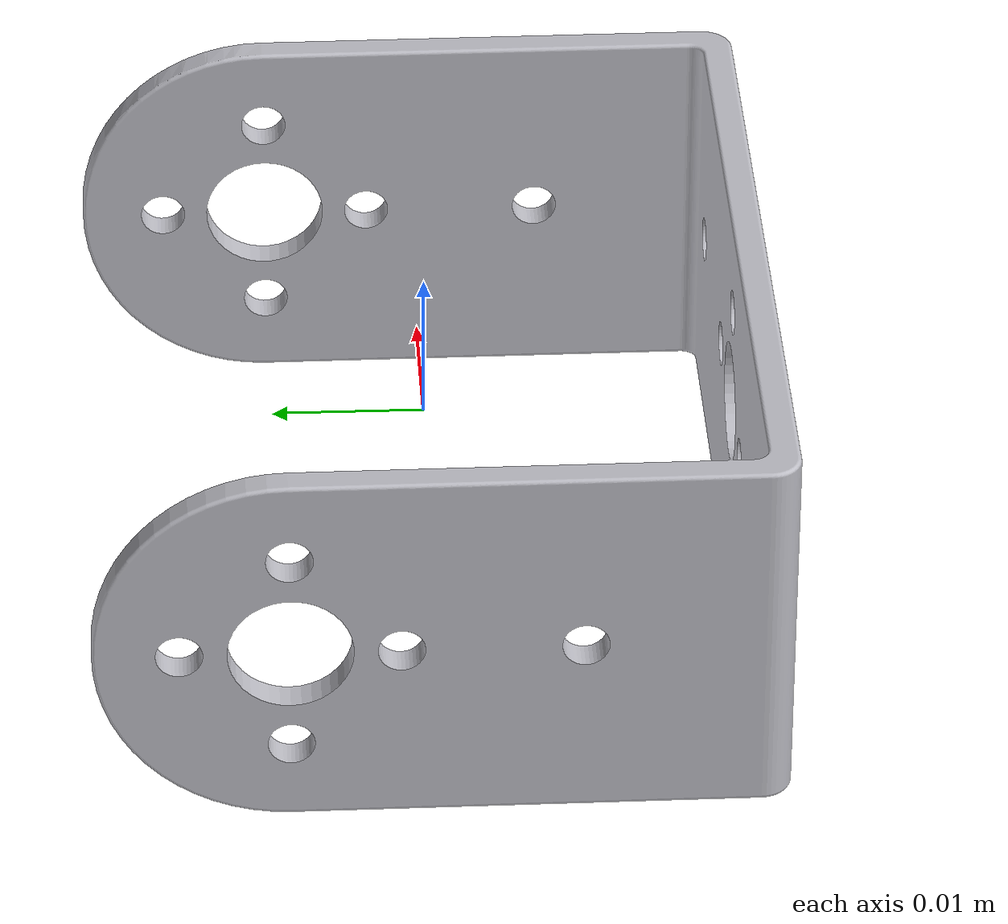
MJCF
<?xml version='1.0' encoding='utf-8'?>
<mujoco model="part_shortU">
  <compiler angle="radian" meshdir="." autolimits="true"/>
  <visual>
    <global offwidth="1024" offheight="1024"/>
    <headlight ambient="0.55 0.55 0.55" diffuse="0.6 0.6 0.6" specular="0.2 0.2 0.2"/>
  </visual>
  <default>
    <default class="visual"><geom type="mesh" contype="0" conaffinity="0" group="2" density="0"/></default>
    <default class="collision"><geom type="mesh" group="3"/></default>
  </default>
  <asset>
    <mesh name="shortU" file="短U支架.STL" scale="0.001 0.001 0.001"/>
    <material name="bracket" rgba="0.75 0.75 0.78 1"/>
  </asset>
  <worldbody>
    <!-- source 短U支架.STL: bbox min 0.001254 0.000251 0.001490 max 54.001255 44.500252 25.001490 mm, size 54.000001 44.500001 25.000000 mm -->
    <body name="shortU">
      <geom name="shortU_visual" mesh="shortU" class="visual" material="bracket" pos="-0.027001 -0.022250 -0.012501"/>
      <geom name="shortU_collision" mesh="shortU" class="collision" pos="-0.027001 -0.022250 -0.012501" density="2700"/>
    </body>
  </worldbody>
</mujoco>
